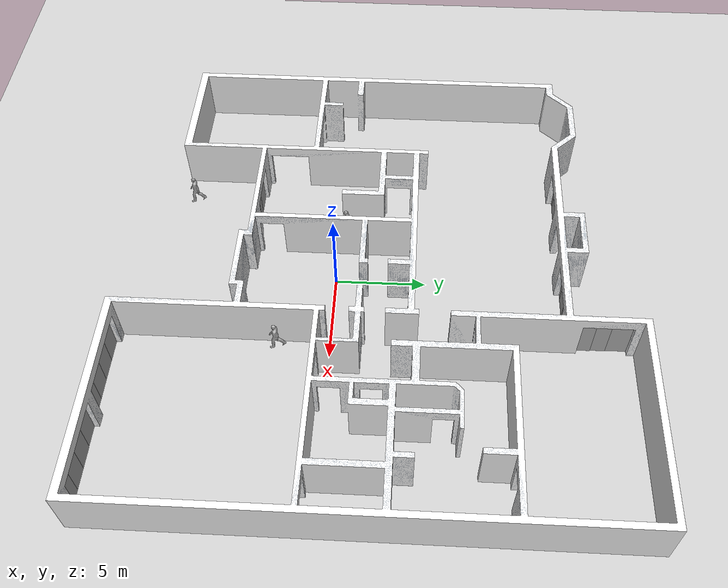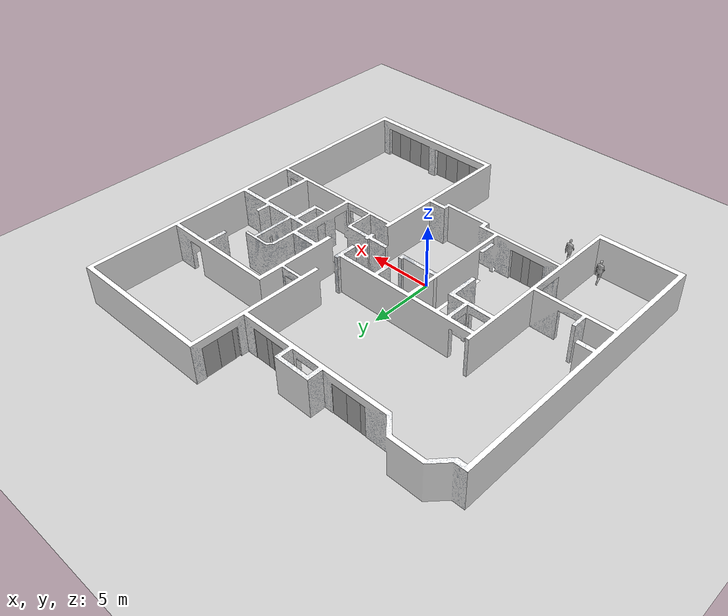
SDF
<sdf version="1.6">
 <world name="default">
  <light name="sun" type="directional">
   <pose>0 0 10 0 -0 0</pose>
   <diffuse>0.8 0.8 0.8 1</diffuse>
   <specular>0.2 0.2 0.2 1</specular>
   <attenuation>
    <range>1000</range>
    <constant>0.9</constant>
    <linear>0.01</linear>
    <quadratic>0.001</quadratic>
   </attenuation>
   <direction>0 0.5 -0.9</direction>
  </light>
  <include>
   <name>person_walking1</name>
   <pose>-3.5 0.4 0.2 0 -0 0</pose>
   <uri>model://person_walking_fixed</uri>
  </include>
  <include>
   <name>person_walking2</name>
   <pose>-5.6 -8.8 0.2 0 -0 0</pose>
   <uri>model://person_walking_fixed</uri>
  </include>
  <include>
   <name>person_walking3</name>
   <pose>4.6 -2.8 0.2 0 -0 0</pose>
   <uri>model://person_walking_fixed</uri>
  </include>
  <include>
   <name>person_walking4</name>
   <pose>-8.5 -8.20 0.2 0 -0 0</pose>
   <uri>model://person_walking_fixed</uri>
  </include>
  <include>
   <name>person_walking5</name>
   <pose>-8.5 -8.20 0.2 0 -0 0</pose>
   <uri>model://person_walking_fixed</uri>
  </include>
  <include>
   <name>person_walking6</name>
   <pose>-8.5 -8.20 0.2 0 -0 0</pose>
   <uri>model://person_walking_fixed</uri>
  </include>
  <include>
   <name>person_walking7</name>
   <pose>-8.5 -8.20 0.2 0 -0 0</pose>
   <uri>model://person_walking_fixed</uri>
  </include>
  <include>
   <name>person_walking8</name>
   <pose>-8.5 -8.20 0.2 0 -0 0</pose>
   <uri>model://person_walking_fixed</uri>
  </include>
  <include>
   <name>person_walking9</name>
   <pose>-8.5 -8.20 0.2 0 -0 0</pose>
   <uri>model://person_walking_fixed</uri>
  </include>
  <include>
   <name>person_walking10</name>
   <pose>-8.5 -8.20 0.2 0 -0 0</pose>
   <uri>model://person_walking_fixed</uri>
  </include>
  <include>
   <name>person_walking11</name>
   <pose>-8.5 -8.20 0.2 0 -0 0</pose>
   <uri>model://person_walking_fixed</uri>
  </include>
  <include>
   <name>person_walking12</name>
   <pose>-8.5 -8.20 0.2 0 -0 0</pose>
   <uri>model://person_walking_fixed</uri>
  </include>
  <model name="apartment">
   <static>1</static>
   <link name="link">
    <collision name="collision">
     <geometry><mesh><uri>model://apartment1/meshes/model.dae</uri><scale>0 0 0</scale></mesh></geometry>
    </collision>
    <visual name="visual">
     <geometry><mesh><uri>model://apartment1/meshes/model.dae</uri><scale>1.5 1.5 1</scale></mesh></geometry>
    </visual>
   </link>
  </model>
  <model name="ground_plane">
   <static>1</static>
   <link name="link">
    <collision name="collision">
     <geometry><plane><normal>0 0 1</normal><size>100 100</size></plane></geometry>
     <surface><friction><ode><mu>100</mu><mu2>50</mu2></ode></friction></surface>
    </collision>
    <visual name="visual">
     <cast_shadows>0</cast_shadows>
     <geometry><plane><normal>0 0 1</normal><size>100 100</size></plane></geometry>
     <material>
      <script><uri>file://media/materials/scripts/gazebo.material</uri><name>Gazebo/Grey</name></script>
     </material>
    </visual>
   </link>
  </model>
  <physics name="default_physics" default="0" type="ode">
   <max_step_size>0.005</max_step_size>
   <real_time_factor>1</real_time_factor>
   <real_time_update_rate>200</real_time_update_rate>
  </physics>
  <gravity>0 0 -9.8</gravity>
  <magnetic_field>6e-06 2.3e-05 -4.2e-05</magnetic_field>
  <atmosphere type="adiabatic"/>
  <scene><ambient>0.4 0.4 0.4 1</ambient><background>0.7 0.7 0.7 1</background><shadows>1</shadows></scene>
  <spherical_coordinates>
   <surface_model>EARTH_WGS84</surface_model>
   <latitude_deg>0</latitude_deg>
   <longitude_deg>0</longitude_deg>
   <elevation>0</elevation>
   <heading_deg>0</heading_deg>
  </spherical_coordinates>
  <model name="nist_maze_wall_240">
   <static>1</static>
   <link name="nist__maze_wall_240_link">
    <collision name="collision">
     <geometry>
      <mesh><uri>model://nist_maze_wall_240/meshes/nist_maze_wall_240.dae</uri><scale>1 1 1</scale></mesh>
     </geometry>
    </collision>
    <visual name="visual">
     <geometry>
      <mesh><uri>model://nist_maze_wall_240/meshes/nist_maze_wall_240.dae</uri><scale>1 1 1</scale></mesh>
     </geometry>
    </visual>
   </link>
   <pose>-5.62462 -5.42237 0 0 -0 0</pose>
  </model>
  <model name="nist_maze_wall_240_0">
   <static>1</static>
   <link name="nist__maze_wall_240_link">
    <collision name="collision">
     <geometry>
      <mesh><uri>model://nist_maze_wall_240/meshes/nist_maze_wall_240.dae</uri><scale>1 1 1</scale></mesh>
     </geometry>
    </collision>
    <visual name="visual">
     <geometry>
      <mesh><uri>model://nist_maze_wall_240/meshes/nist_maze_wall_240.dae</uri><scale>1 1 1</scale></mesh>
     </geometry>
    </visual>
   </link>
   <pose>-4.42641 -5.42473 0 0 -0 0</pose>
  </model>
  <model name="nist_maze_wall_240_1">
   <static>1</static>
   <link name="nist__maze_wall_240_link">
    <collision name="collision">
     <geometry>
      <mesh><uri>model://nist_maze_wall_240/meshes/nist_maze_wall_240.dae</uri><scale>1 1 1</scale></mesh>
     </geometry>
    </collision>
    <visual name="visual">
     <geometry>
      <mesh><uri>model://nist_maze_wall_240/meshes/nist_maze_wall_240.dae</uri><scale>1 1 1</scale></mesh>
     </geometry>
    </visual>
   </link>
   <pose>-3.83522 -5.41824 0 0 -0 0</pose>
  </model>
  <model name="nist_maze_wall_240_2">
   <static>1</static>
   <link name="nist__maze_wall_240_link">
    <collision name="collision">
     <geometry>
      <mesh><uri>model://nist_maze_wall_240/meshes/nist_maze_wall_240.dae</uri><scale>1 1 1</scale></mesh>
     </geometry>
    </collision>
    <visual name="visual">
     <geometry>
      <mesh><uri>model://nist_maze_wall_240/meshes/nist_maze_wall_240.dae</uri><scale>1 1 1</scale></mesh>
     </geometry>
    </visual>
   </link>
   <pose>5.22507 -12.1453 0 0 -0 0</pose>
  </model>
  <model name="nist_maze_wall_240_3">
   <static>1</static>
   <link name="nist__maze_wall_240_link">
    <collision name="collision">
     <geometry>
      <mesh><uri>model://nist_maze_wall_240/meshes/nist_maze_wall_240.dae</uri><scale>1 1 1</scale></mesh>
     </geometry>
    </collision>
    <visual name="visual">
     <geometry>
      <mesh><uri>model://nist_maze_wall_240/meshes/nist_maze_wall_240.dae</uri><scale>1 1 1</scale></mesh>
     </geometry>
    </visual>
   </link>
   <pose>6.41411 -12.1472 0 0 -0 0</pose>
  </model>
  <model name="nist_maze_wall_240_4">
   <static>1</static>
   <link name="nist__maze_wall_240_link">
    <collision name="collision">
     <geometry>
      <mesh><uri>model://nist_maze_wall_240/meshes/nist_maze_wall_240.dae</uri><scale>1 1 1</scale></mesh>
     </geometry>
    </collision>
    <visual name="visual">
     <geometry>
      <mesh><uri>model://nist_maze_wall_240/meshes/nist_maze_wall_240.dae</uri><scale>1 1 1</scale></mesh>
     </geometry>
    </visual>
   </link>
   <pose>7.60769 -12.1443 0 0 -0 0</pose>
  </model>
  <model name="nist_maze_wall_240_5">
   <static>1</static>
   <link name="nist__maze_wall_240_link">
    <collision name="collision">
     <geometry>
      <mesh><uri>model://nist_maze_wall_240/meshes/nist_maze_wall_240.dae</uri><scale>1 1 1</scale></mesh>
     </geometry>
    </collision>
    <visual name="visual">
     <geometry>
      <mesh><uri>model://nist_maze_wall_240/meshes/nist_maze_wall_240.dae</uri><scale>1 1 1</scale></mesh>
     </geometry>
    </visual>
   </link>
   <pose>8.76171 -12.1418 0 0 -0 0</pose>
  </model>
  <model name="nist_maze_wall_240_6">
   <static>1</static>
   <link name="nist__maze_wall_240_link">
    <collision name="collision">
     <geometry>
      <mesh><uri>model://nist_maze_wall_240/meshes/nist_maze_wall_240.dae</uri><scale>1 1 1</scale></mesh>
     </geometry>
    </collision>
    <visual name="visual">
     <geometry>
      <mesh><uri>model://nist_maze_wall_240/meshes/nist_maze_wall_240.dae</uri><scale>1 1 1</scale></mesh>
     </geometry>
    </visual>
   </link>
   <pose>10.2844 -12.1146 0 0 -0 0</pose>
  </model>
  <model name="nist_maze_wall_240_7">
   <static>1</static>
   <link name="nist__maze_wall_240_link">
    <collision name="collision">
     <geometry>
      <mesh><uri>model://nist_maze_wall_240/meshes/nist_maze_wall_240.dae</uri><scale>1 1 1</scale></mesh>
     </geometry>
    </collision>
    <visual name="visual">
     <geometry>
      <mesh><uri>model://nist_maze_wall_240/meshes/nist_maze_wall_240.dae</uri><scale>1 1 1</scale></mesh>
     </geometry>
    </visual>
   </link>
   <pose>11.4759 -12.1038 0 0 -0 0</pose>
  </model>
  <model name="nist_maze_wall_240_8">
   <static>1</static>
   <link name="nist__maze_wall_240_link">
    <collision name="collision">
     <geometry>
      <mesh><uri>model://nist_maze_wall_240/meshes/nist_maze_wall_240.dae</uri><scale>1 1 1</scale></mesh>
     </geometry>
    </collision>
    <visual name="visual">
     <geometry>
      <mesh><uri>model://nist_maze_wall_240/meshes/nist_maze_wall_240.dae</uri><scale>1 1 1</scale></mesh>
     </geometry>
    </visual>
   </link>
   <pose>12.6477 -12.1007 0 0 -0 0</pose>
  </model>
  <model name="nist_maze_wall_240_9">
   <static>1</static>
   <link name="nist__maze_wall_240_link">
    <collision name="collision">
     <geometry>
      <mesh><uri>model://nist_maze_wall_240/meshes/nist_maze_wall_240.dae</uri><scale>1 1 1</scale></mesh>
     </geometry>
    </collision>
    <visual name="visual">
     <geometry>
      <mesh><uri>model://nist_maze_wall_240/meshes/nist_maze_wall_240.dae</uri><scale>1 1 1</scale></mesh>
     </geometry>
    </visual>
   </link>
   <pose>13.7787 -12.0973 0 0 -0 0</pose>
  </model>
  <model name="nist_maze_wall_240_10">
   <static>1</static>
   <link name="nist__maze_wall_240_link">
    <collision name="collision">
     <geometry>
      <mesh><uri>model://nist_maze_wall_240/meshes/nist_maze_wall_240.dae</uri><scale>1 1 1</scale></mesh>
     </geometry>
    </collision>
    <visual name="visual">
     <geometry>
      <mesh><uri>model://nist_maze_wall_240/meshes/nist_maze_wall_240.dae</uri><scale>1 1 1</scale></mesh>
     </geometry>
    </visual>
   </link>
   <pose>2.39491 11.9307 0 0 -0 0</pose>
  </model>
  <model name="nist_maze_wall_240_11">
   <static>1</static>
   <link name="nist__maze_wall_240_link">
    <collision name="collision">
     <geometry>
      <mesh><uri>model://nist_maze_wall_240/meshes/nist_maze_wall_240.dae</uri><scale>1 1 1</scale></mesh>
     </geometry>
    </collision>
    <visual name="visual">
     <geometry>
      <mesh><uri>model://nist_maze_wall_240/meshes/nist_maze_wall_240.dae</uri><scale>1 1 1</scale></mesh>
     </geometry>
    </visual>
   </link>
   <pose>1.23189 11.9352 0 0 -0 0</pose>
  </model>
  <model name="nist_maze_wall_240_12">
   <static>1</static>
   <link name="nist__maze_wall_240_link">
    <collision name="collision">
     <geometry>
      <mesh><uri>model://nist_maze_wall_240/meshes/nist_maze_wall_240.dae</uri><scale>1 1 1</scale></mesh>
     </geometry>
    </collision>
    <visual name="visual">
     <geometry>
      <mesh><uri>model://nist_maze_wall_240/meshes/nist_maze_wall_240.dae</uri><scale>1 1 1</scale></mesh>
     </geometry>
    </visual>
   </link>
   <pose>0.748308 11.9491 0 0 -0 0</pose>
  </model>
  <model name="nist_maze_wall_240_13">
   <static>1</static>
   <link name="nist__maze_wall_240_link">
    <collision name="collision">
     <geometry>
      <mesh><uri>model://nist_maze_wall_240/meshes/nist_maze_wall_240.dae</uri><scale>1 1 1</scale></mesh>
     </geometry>
    </collision>
    <visual name="visual">
     <geometry>
      <mesh><uri>model://nist_maze_wall_240/meshes/nist_maze_wall_240.dae</uri><scale>1 1 1</scale></mesh>
     </geometry>
    </visual>
   </link>
   <pose>-4.462 11.9371 0 0 -0 0</pose>
  </model>
  <model name="nist_maze_wall_240_14">
   <static>1</static>
   <link name="nist__maze_wall_240_link">
    <collision name="collision">
     <geometry>
      <mesh><uri>model://nist_maze_wall_240/meshes/nist_maze_wall_240.dae</uri><scale>1 1 1</scale></mesh>
     </geometry>
    </collision>
    <visual name="visual">
     <geometry>
      <mesh><uri>model://nist_maze_wall_240/meshes/nist_maze_wall_240.dae</uri><scale>1 1 1</scale></mesh>
     </geometry>
    </visual>
   </link>
   <pose>-5.62672 11.9345 0 0 -0 0</pose>
  </model>
  <model name="nist_maze_wall_240_15">
   <static>1</static>
   <link name="nist__maze_wall_240_link">
    <collision name="collision">
     <geometry>
      <mesh><uri>model://nist_maze_wall_240/meshes/nist_maze_wall_240.dae</uri><scale>1 1 1</scale></mesh>
     </geometry>
    </collision>
    <visual name="visual">
     <geometry>
      <mesh><uri>model://nist_maze_wall_240/meshes/nist_maze_wall_240.dae</uri><scale>1 1 1</scale></mesh>
     </geometry>
    </visual>
   </link>
   <pose>-6.75465 11.9424 0 0 -0 0</pose>
  </model>
  <model name="nist_maze_wall_240_16">
   <static>1</static>
   <link name="nist__maze_wall_240_link">
    <collision name="collision">
     <geometry>
      <mesh><uri>model://nist_maze_wall_240/meshes/nist_maze_wall_240.dae</uri><scale>1 1 1</scale></mesh>
     </geometry>
    </collision>
    <visual name="visual">
     <geometry>
      <mesh><uri>model://nist_maze_wall_240/meshes/nist_maze_wall_240.dae</uri><scale>1 1 1</scale></mesh>
     </geometry>
    </visual>
   </link>
   <pose>3.28184 15.2494 0 0 0 -1.56423</pose>
  </model>
  <model name="nist_maze_wall_240_17">
   <static>1</static>
   <link name="nist__maze_wall_240_link">
    <collision name="collision">
     <geometry>
      <mesh><uri>model://nist_maze_wall_240/meshes/nist_maze_wall_240.dae</uri><scale>1 1 1</scale></mesh>
     </geometry>
    </collision>
    <visual name="visual">
     <geometry>
      <mesh><uri>model://nist_maze_wall_240/meshes/nist_maze_wall_240.dae</uri><scale>1 1 1</scale></mesh>
     </geometry>
    </visual>
   </link>
   <pose>3.30652 14.115 0 0 0 -1.56211</pose>
  </model>
  <model name="nist_maze_wall_240_18">
   <static>1</static>
   <link name="nist__maze_wall_240_link">
    <collision name="collision">
     <geometry>
      <mesh><uri>model://nist_maze_wall_240/meshes/nist_maze_wall_240.dae</uri><scale>1 1 1</scale></mesh>
     </geometry>
    </collision>
    <visual name="visual">
     <geometry>
      <mesh><uri>model://nist_maze_wall_240/meshes/nist_maze_wall_240.dae</uri><scale>1 1 1</scale></mesh>
     </geometry>
    </visual>
   </link>
   <pose>3.33742 13.3076 0 0 0 -1.55872</pose>
  </model>
 </world>
</sdf>

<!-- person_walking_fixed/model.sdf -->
<sdf version="1.5">
  <model name="person_walking">
    <link name="link">
      <inertial>
        <pose>0 0 0.95 0 0 0</pose>
        <mass>80.0</mass>
        <inertia>
          <ixx>27.82</ixx>
          <ixy>0</ixy>
          <ixz>0</ixz>
          <iyy>24.88</iyy>
          <iyz>0</iyz>
          <izz>4.57</izz>
        </inertia>
      </inertial>

      <visual name="visual">
        <pose>0 0 -0.02 0 0 0</pose>
        <geometry>
          <mesh>
            <uri>model://person_walking/meshes/walking.dae</uri>
          </mesh>
        </geometry>
      </visual>
      <self_collide>0</self_collide>
      <kinematic>0</kinematic>
      <gravity>0</gravity>
    </link>
  </model>
</sdf>
